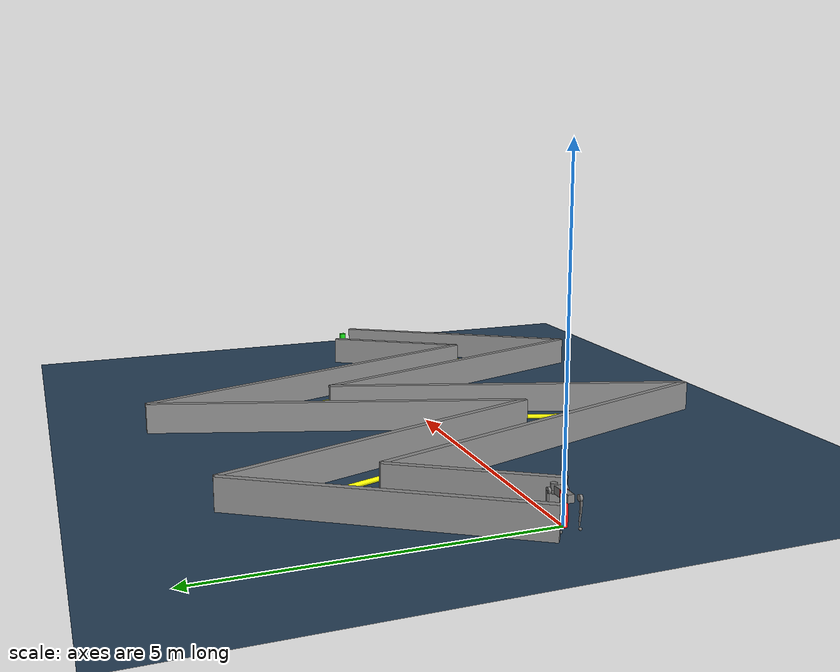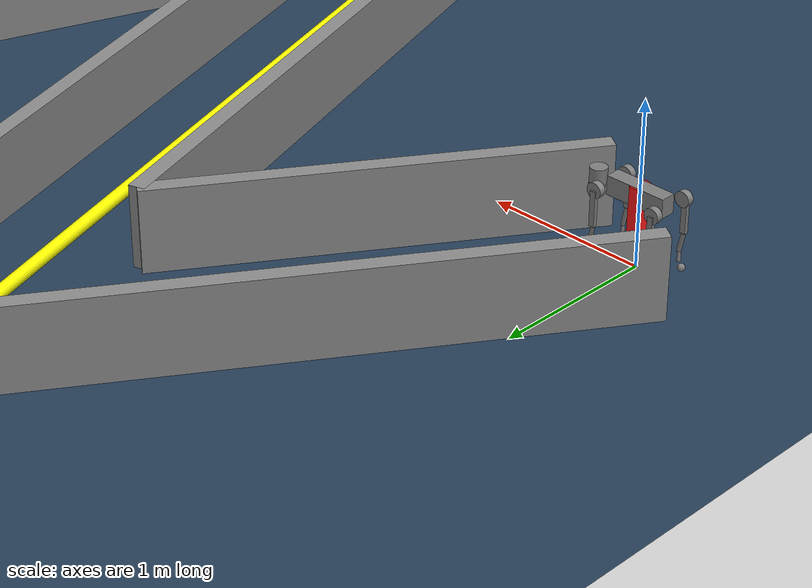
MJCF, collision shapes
<mujoco model="go2 zigzag course walled">
  <include file="go2.xml"/>

  <statistic center="5 0 0" extent="8"/>

  <visual>
    <headlight diffuse="0.6 0.6 0.6" ambient="0.3 0.3 0.3" specular="0 0 0"/>
    <rgba haze="0.15 0.25 0.35 1"/>
    <global azimuth="-130" elevation="-20"/>
  </visual>

  <asset>
    <texture type="skybox" builtin="gradient" rgb1="0.3 0.5 0.7" rgb2="0 0 0" width="512" height="3072"/>
    <texture type="2d" name="groundplane" builtin="checker" mark="edge" rgb1="0.2 0.3 0.4" rgb2="0.1 0.2 0.3"
      markrgb="0.8 0.8 0.8" width="300" height="300"/>
    <material name="groundplane" texture="groundplane" texuniform="true" texrepeat="5 5" reflectance="0.2"/>
  </asset>

  <worldbody>
    <light pos="5 0 4" dir="0 0 -1" directional="true"/>
    <geom name="floor" size="0 0 0.05" type="plane" material="groundplane"/>

    <geom name="wp_0" type="cylinder" pos=" 0  0 0.25" size="0.06 0.25" rgba="1.0 0.1 0.1 1" contype="0" conaffinity="0"/>
    <geom name="wp_1" type="cylinder" pos=" 2  3 0.125" size="0.06 0.125" rgba="1.0 0.5 0.0 0.3" contype="0" conaffinity="0"/>
    <geom name="wp_2" type="cylinder" pos=" 4 -3 0.125" size="0.06 0.125" rgba="1.0 0.5 0.0 0.3" contype="0" conaffinity="0"/>
    <geom name="wp_3" type="cylinder" pos=" 6  3 0.125" size="0.06 0.125" rgba="1.0 0.5 0.0 0.3" contype="0" conaffinity="0"/>
    <geom name="wp_4" type="cylinder" pos=" 8 -3 0.125" size="0.06 0.125" rgba="1.0 0.5 0.0 0.3" contype="0" conaffinity="0"/>
    <geom name="wp_5" type="cylinder" pos="10  0 0.25" size="0.06 0.25" rgba="0.1 0.9 0.1 1" contype="0" conaffinity="0"/>

    <!-- ── Path segments (capsules) ────────────────────────────────────────
         fromto connects consecutive waypoints directly on the ground.    -->
    <geom name="seg_0" type="capsule" fromto=" 0  0 0.04   2  3 0.04" size="0.04" rgba="1 1 0 0.9" contype="0" conaffinity="0"/>
    <geom name="seg_1" type="capsule" fromto=" 2  3 0.04   4 -3 0.04" size="0.04" rgba="1 1 0 0.9" contype="0" conaffinity="0"/>
    <geom name="seg_2" type="capsule" fromto=" 4 -3 0.04   6  3 0.04" size="0.04" rgba="1 1 0 0.9" contype="0" conaffinity="0"/>
    <geom name="seg_3" type="capsule" fromto=" 6  3 0.04   8 -3 0.04" size="0.04" rgba="1 1 0 0.9" contype="0" conaffinity="0"/>
    <geom name="seg_4" type="capsule" fromto=" 8 -3 0.04  10  0 0.04" size="0.04" rgba="1 1 0 0.9" contype="0" conaffinity="0"/>

    <!-- Seg 0 walls  ez=0.9828 (atan2(3,2) = 56.3°) -->
    <geom name="wall_L0" type="box" pos=" 0.868  2.203 0.25" size="2.315 0.05 0.25" euler="0 0  0.9828" rgba="0.55 0.55 0.55 1"/>
    <geom name="wall_R0" type="box" pos=" 1.133  0.798 0.25" size="1.292 0.05 0.25" euler="0 0  0.9828" rgba="0.55 0.55 0.55 1"/>

    <!-- Seg 1 walls  ez=-1.2490 (atan2(-6,2) = -71.6°) -->
    <geom name="wall_L1" type="box" pos=" 3.076  1.355 0.25" size="2.924 0.05 0.25" euler="0 0 -1.2490" rgba="0.55 0.55 0.55 1"/>
    <geom name="wall_R1" type="box" pos=" 2.925 -1.354 0.25" size="3.401 0.05 0.25" euler="0 0 -1.2490" rgba="0.55 0.55 0.55 1"/>

    <!-- Seg 2 walls  ez=1.2490 (atan2(6,2) = 71.6°) -->
    <geom name="wall_L2" type="box" pos=" 5.000  1.581 0.25" size="3.162 0.05 0.25" euler="0 0  1.2490" rgba="0.55 0.55 0.55 1"/>
    <geom name="wall_R2" type="box" pos=" 5.000 -1.581 0.25" size="3.162 0.05 0.25" euler="0 0  1.2490" rgba="0.55 0.55 0.55 1"/>

    <!-- Seg 3 walls  ez=-1.2490 -->
    <geom name="wall_L3" type="box" pos=" 7.076  1.355 0.25" size="3.401 0.05 0.25" euler="0 0 -1.2490" rgba="0.55 0.55 0.55 1"/>
    <geom name="wall_R3" type="box" pos=" 6.925 -1.355 0.25" size="2.924 0.05 0.25" euler="0 0 -1.2490" rgba="0.55 0.55 0.55 1"/>

    <!-- Seg 4 walls  ez=0.9828 -->
    <geom name="wall_L4" type="box" pos=" 8.868 -0.798 0.25" size="1.292 0.05 0.25" euler="0 0  0.9828" rgba="0.55 0.55 0.55 1"/>
    <geom name="wall_R4" type="box" pos=" 9.133 -2.203 0.25" size="2.315 0.05 0.25" euler="0 0  0.9828" rgba="0.55 0.55 0.55 1"/>

  </worldbody>

  <!-- Spawn facing 45° CCW (northeast) — aligns with first zigzag segment -->
  <!-- yaw=45° → qw=cos(22.5°)=0.9239, qz=sin(22.5°)=0.3827 -->
  <keyframe>
    <key name="home" qpos="0 0 0.27 0.9239 0 0 0.3827 0 0.9 -1.8 0 0.9 -1.8 0 0.9 -1.8 0 0.9 -1.8"
      ctrl="0 0.9 -1.8 0 0.9 -1.8 0 0.9 -1.8 0 0.9 -1.8" />
  </keyframe>

</mujoco>

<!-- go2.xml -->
<mujoco model="go2">
  <compiler angle="radian" meshdir="assets" autolimits="true" />

  <option cone="elliptic" impratio="100" />

  <default>
    <default class="go2">
      <geom friction="0.4" margin="0.001" condim="1"/>
      <joint axis="0 1 0" damping="0.1" armature="0.01" frictionloss="0.2"/>
      <motor ctrlrange="-23.7 23.7"/>
      <default class="abduction">
        <joint axis="1 0 0" range="-1.0472 1.0472"/>
      </default>
      <default class="hip">
        <default class="front_hip">
          <joint range="-1.5708 3.4907"/>
        </default>
        <default class="back_hip">
          <joint range="-0.5236 4.5379"/>
        </default>
      </default>
      <default class="knee">
        <joint range="-2.7227 -0.83776"/>
        <motor ctrlrange="-45.43 45.43"/>
      </default>
      <default class="visual">
        <geom type="mesh" contype="0" conaffinity="0" group="2"/>
      </default>
      <default class="collision">
        <geom group="3"/>
        <default class="foot">
          <geom size="0.022" pos="-0.002 0 -0.213" priority="1" condim="6"
            friction="0.8 0.02 0.01"/>
        </default>
      </default>
    </default>
  </default>

  <asset>
    <material name="metal" rgba=".9 .95 .95 1" />
    <material name="black" rgba="0 0 0 1" />
    <material name="white" rgba="1 1 1 1" />
    <material name="gray" rgba="0.671705 0.692426 0.774270 1" />

    <mesh file="base_0.obj" />
    <mesh file="base_1.obj" />
    <mesh file="base_2.obj" />
    <mesh file="base_3.obj" />
    <mesh file="base_4.obj" />
    <mesh file="hip_0.obj" />
    <mesh file="hip_1.obj" />
    <mesh file="thigh_0.obj" />
    <mesh file="thigh_1.obj" />
    <mesh file="thigh_mirror_0.obj" />
    <mesh file="thigh_mirror_1.obj" />
    <mesh file="calf_0.obj" />
    <mesh file="calf_1.obj" />
    <mesh file="calf_mirror_0.obj" />
    <mesh file="calf_mirror_1.obj" />
    <mesh file="foot.obj" />
  </asset>

  <worldbody>
    <body name="base_link" pos="0 0 0.445" childclass="go2">
      <inertial pos="0.021112 0 -0.005366" quat="-0.000543471 0.713435 -0.00173769 0.700719"
        mass="6.921"
        diaginertia="0.107027 0.0980771 0.0244531" />
      <freejoint />
      <geom mesh="base_0" material="black" class="visual" />
      <geom mesh="base_1" material="black" class="visual" />
      <geom mesh="base_2" material="black" class="visual" />
      <geom mesh="base_3" material="white" class="visual" />
      <geom mesh="base_4" material="gray" class="visual" />
      <geom size="0.1881 0.04675 0.057" type="box" class="collision" />
      <geom size="0.05 0.045" pos="0.285 0 0.01" type="cylinder" class="collision" />
      <geom size="0.047" pos="0.293 0 -0.06" class="collision" />
      <site name="imu" pos="-0.02557 0 0.04232" />
      <!-- 1st-person camera: mounted at Go2's head, looking forward (+X body) -->
      <camera name="head_cam" pos="0.30 0 0.05" xyaxes="0 -1 0 0 0 1" fovy="90" />
      <body name="FL_hip" pos="0.1934 0.0465 0">
        <inertial pos="-0.0054 0.00194 -0.000105" quat="0.497014 0.499245 0.505462 0.498237"
          mass="0.678"
          diaginertia="0.00088403 0.000596003 0.000479967" />
        <joint name="FL_hip_joint" class="abduction" />
        <geom mesh="hip_0" material="metal" class="visual" />
        <geom mesh="hip_1" material="gray" class="visual" />
        <geom size="0.046 0.02" pos="0 0.08 0" quat="1 1 0 0" type="cylinder" class="collision" />
        <body name="FL_thigh" pos="0 0.0955 0">
          <inertial pos="-0.00374 -0.0223 -0.0327" quat="0.829533 0.0847635 -0.0200632 0.551623"
            mass="1.152"
            diaginertia="0.00594973 0.00584149 0.000878787" />
          <joint name="FL_thigh_joint" class="front_hip" />
          <geom mesh="thigh_0" material="metal" class="visual" />
          <geom mesh="thigh_1" material="gray" class="visual" />
          <geom size="0.1065 0.01225 0.017" pos="0 0 -0.1065" quat="0.707107 0 0.707107 0"
            type="box" class="collision" />
          <body name="FL_calf" pos="0 0 -0.213">
            <inertial pos="0.00629595 -0.000622121 -0.141417"
              quat="0.710672 0.00154099 -0.00450087 0.703508"
              mass="0.241352" diaginertia="0.0014901 0.00146356 5.31397e-05" />
            <joint name="FL_calf_joint" class="knee" />
            <geom mesh="calf_0" material="gray" class="visual" />
            <geom mesh="calf_1" material="black" class="visual" />
            <geom size="0.012 0.06" pos="0.008 0 -0.06" quat="0.994493 0 -0.104807 0"
              type="cylinder" class="collision" />
            <geom size="0.011 0.0325" pos="0.02 0 -0.148" quat="0.999688 0 0.0249974 0"
              type="cylinder" class="collision" />
            <geom pos="0 0 -0.213" mesh="foot" class="visual" material="black" />
            <geom name="FL" class="foot" />
            <body name="FL_foot" pos="0 0 -0.213" />
          </body>
        </body>
      </body>
      <body name="FR_hip" pos="0.1934 -0.0465 0">
        <inertial pos="-0.0054 -0.00194 -0.000105" quat="0.498237 0.505462 0.499245 0.497014"
          mass="0.678"
          diaginertia="0.00088403 0.000596003 0.000479967" />
        <joint name="FR_hip_joint" class="abduction" />
        <geom mesh="hip_0" material="metal" class="visual" quat="4.63268e-05 1 0 0" />
        <geom mesh="hip_1" material="gray" class="visual" quat="4.63268e-05 1 0 0" />
        <geom size="0.046 0.02" pos="0 -0.08 0" quat="0.707107 0.707107 0 0" type="cylinder"
          class="collision" />
        <body name="FR_thigh" pos="0 -0.0955 0">
          <inertial pos="-0.00374 0.0223 -0.0327" quat="0.551623 -0.0200632 0.0847635 0.829533"
            mass="1.152"
            diaginertia="0.00594973 0.00584149 0.000878787" />
          <joint name="FR_thigh_joint" class="front_hip" />
          <geom mesh="thigh_mirror_0" material="metal" class="visual" />
          <geom mesh="thigh_mirror_1" material="gray" class="visual" />
          <geom size="0.1065 0.01225 0.017" pos="0 0 -0.1065" quat="0.707107 0 0.707107 0"
            type="box" class="collision" />
          <body name="FR_calf" pos="0 0 -0.213">
            <inertial pos="0.00629595 0.000622121 -0.141417"
              quat="0.703508 -0.00450087 0.00154099 0.710672"
              mass="0.241352" diaginertia="0.0014901 0.00146356 5.31397e-05" />
            <joint name="FR_calf_joint" class="knee" />
            <geom mesh="calf_mirror_0" material="gray" class="visual" />
            <geom mesh="calf_mirror_1" material="black" class="visual" />
            <geom size="0.013 0.06" pos="0.01 0 -0.06" quat="0.995004 0 -0.0998334 0"
              type="cylinder" class="collision" />
            <geom size="0.011 0.0325" pos="0.02 0 -0.148" quat="0.999688 0 0.0249974 0"
              type="cylinder" class="collision" />
            <geom pos="0 0 -0.213" mesh="foot" class="visual" material="black" />
            <geom name="FR" class="foot" />
            <body name="FR_foot" pos="0 0 -0.213" />
          </body>
        </body>
      </body>
      <body name="RL_hip" pos="-0.1934 0.0465 0">
        <inertial pos="0.0054 0.00194 -0.000105" quat="0.505462 0.498237 0.497014 0.499245"
          mass="0.678"
          diaginertia="0.00088403 0.000596003 0.000479967" />
        <joint name="RL_hip_joint" class="abduction" />
        <geom mesh="hip_0" material="metal" class="visual" quat="4.63268e-05 0 1 0" />
        <geom mesh="hip_1" material="gray" class="visual" quat="4.63268e-05 0 1 0" />
        <geom size="0.046 0.02" pos="0 0.08 0" quat="0.707107 0.707107 0 0" type="cylinder"
          class="collision" />
        <body name="RL_thigh" pos="0 0.0955 0">
          <inertial pos="-0.00374 -0.0223 -0.0327" quat="0.829533 0.0847635 -0.0200632 0.551623"
            mass="1.152"
            diaginertia="0.00594973 0.00584149 0.000878787" />
          <joint name="RL_thigh_joint" class="back_hip" />
          <geom mesh="thigh_0" material="metal" class="visual" />
          <geom mesh="thigh_1" material="gray" class="visual" />
          <geom size="0.1065 0.01225 0.017" pos="0 0 -0.1065" quat="0.707107 0 0.707107 0"
            type="box" class="collision" />
          <body name="RL_calf" pos="0 0 -0.213">
            <inertial pos="0.00629595 -0.000622121 -0.141417"
              quat="0.710672 0.00154099 -0.00450087 0.703508"
              mass="0.241352" diaginertia="0.0014901 0.00146356 5.31397e-05" />
            <joint name="RL_calf_joint" class="knee" />
            <geom mesh="calf_0" material="gray" class="visual" />
            <geom mesh="calf_1" material="black" class="visual" />
            <geom size="0.013 0.06" pos="0.01 0 -0.06" quat="0.995004 0 -0.0998334 0"
              type="cylinder" class="collision" />
            <geom size="0.011 0.0325" pos="0.02 0 -0.148" quat="0.999688 0 0.0249974 0"
              type="cylinder" class="collision" />
            <geom pos="0 0 -0.213" mesh="foot" class="visual" material="black" />
            <geom name="RL" class="foot" />
            <body name="RL_foot" pos="0 0 -0.213" />
          </body>
        </body>
      </body>
      <body name="RR_hip" pos="-0.1934 -0.0465 0">
        <inertial pos="0.0054 -0.00194 -0.000105" quat="0.499245 0.497014 0.498237 0.505462"
          mass="0.678"
          diaginertia="0.00088403 0.000596003 0.000479967" />
        <joint name="RR_hip_joint" class="abduction" />
        <geom mesh="hip_0" material="metal" class="visual"
          quat="2.14617e-09 4.63268e-05 4.63268e-05 -1" />
        <geom mesh="hip_1" material="gray" class="visual"
          quat="2.14617e-09 4.63268e-05 4.63268e-05 -1" />
        <geom size="0.046 0.02" pos="0 -0.08 0" quat="0.707107 0.707107 0 0" type="cylinder"
          class="collision" />
        <body name="RR_thigh" pos="0 -0.0955 0">
          <inertial pos="-0.00374 0.0223 -0.0327" quat="0.551623 -0.0200632 0.0847635 0.829533"
            mass="1.152"
            diaginertia="0.00594973 0.00584149 0.000878787" />
          <joint name="RR_thigh_joint" class="back_hip" />
          <geom mesh="thigh_mirror_0" material="metal" class="visual" />
          <geom mesh="thigh_mirror_1" material="gray" class="visual" />
          <geom size="0.1065 0.01225 0.017" pos="0 0 -0.1065" quat="0.707107 0 0.707107 0"
            type="box" class="collision" />
          <body name="RR_calf" pos="0 0 -0.213">
            <inertial pos="0.00629595 0.000622121 -0.141417"
              quat="0.703508 -0.00450087 0.00154099 0.710672"
              mass="0.241352" diaginertia="0.0014901 0.00146356 5.31397e-05" />
            <joint name="RR_calf_joint" class="knee" />
            <geom mesh="calf_mirror_0" material="gray" class="visual" />
            <geom mesh="calf_mirror_1" material="black" class="visual" />
            <geom size="0.013 0.06" pos="0.01 0 -0.06" quat="0.995004 0 -0.0998334 0"
              type="cylinder" class="collision" />
            <geom size="0.011 0.0325" pos="0.02 0 -0.148" quat="0.999688 0 0.0249974 0"
              type="cylinder" class="collision" />
            <geom pos="0 0 -0.213" mesh="foot" class="visual" material="black" />
            <geom name="RR" class="foot" />
            <body name="RR_foot" pos="0 0 -0.213" />
          </body>
        </body>
      </body>
    </body>
  </worldbody>

  <actuator>
    <motor class="abduction" name="FR_hip" joint="FR_hip_joint" />
    <motor class="hip" name="FR_thigh" joint="FR_thigh_joint" />
    <motor class="knee" name="FR_calf" joint="FR_calf_joint" />
    <motor class="abduction" name="FL_hip" joint="FL_hip_joint" />
    <motor class="hip" name="FL_thigh" joint="FL_thigh_joint" />
    <motor class="knee" name="FL_calf" joint="FL_calf_joint" />
    <motor class="abduction" name="RR_hip" joint="RR_hip_joint" />
    <motor class="hip" name="RR_thigh" joint="RR_thigh_joint" />
    <motor class="knee" name="RR_calf" joint="RR_calf_joint" />
    <motor class="abduction" name="RL_hip" joint="RL_hip_joint" />
    <motor class="hip" name="RL_thigh" joint="RL_thigh_joint" />
    <motor class="knee" name="RL_calf" joint="RL_calf_joint" />
  </actuator>

  <sensor>
    <jointpos name="FR_hip_pos" joint="FR_hip_joint" />
    <jointpos name="FR_thigh_pos" joint="FR_thigh_joint" />
    <jointpos name="FR_calf_pos" joint="FR_calf_joint" />
    <jointpos name="FL_hip_pos" joint="FL_hip_joint" />
    <jointpos name="FL_thigh_pos" joint="FL_thigh_joint" />
    <jointpos name="FL_calf_pos" joint="FL_calf_joint" />
    <jointpos name="RR_hip_pos" joint="RR_hip_joint" />
    <jointpos name="RR_thigh_pos" joint="RR_thigh_joint" />
    <jointpos name="RR_calf_pos" joint="RR_calf_joint" />
    <jointpos name="RL_hip_pos" joint="RL_hip_joint" />
    <jointpos name="RL_thigh_pos" joint="RL_thigh_joint" />
    <jointpos name="RL_calf_pos" joint="RL_calf_joint" />

    <jointvel name="FR_hip_vel" joint="FR_hip_joint" />
    <jointvel name="FR_thigh_vel" joint="FR_thigh_joint" />
    <jointvel name="FR_calf_vel" joint="FR_calf_joint" />
    <jointvel name="FL_hip_vel" joint="FL_hip_joint" />
    <jointvel name="FL_thigh_vel" joint="FL_thigh_joint" />
    <jointvel name="FL_calf_vel" joint="FL_calf_joint" />
    <jointvel name="RR_hip_vel" joint="RR_hip_joint" />
    <jointvel name="RR_thigh_vel" joint="RR_thigh_joint" />
    <jointvel name="RR_calf_vel" joint="RR_calf_joint" />
    <jointvel name="RL_hip_vel" joint="RL_hip_joint" />
    <jointvel name="RL_thigh_vel" joint="RL_thigh_joint" />
    <jointvel name="RL_calf_vel" joint="RL_calf_joint" />

    <jointactuatorfrc name="FR_hip_torque" joint="FR_hip_joint" noise="0.01" />
    <jointactuatorfrc name="FR_thigh_torque" joint="FR_thigh_joint" noise="0.01" />
    <jointactuatorfrc name="FR_calf_torque" joint="FR_calf_joint" noise="0.01" />
    <jointactuatorfrc name="FL_hip_torque" joint="FL_hip_joint" noise="0.01" />
    <jointactuatorfrc name="FL_thigh_torque" joint="FL_thigh_joint" noise="0.01" />
    <jointactuatorfrc name="FL_calf_torque" joint="FL_calf_joint" noise="0.01" />
    <jointactuatorfrc name="RR_hip_torque" joint="RR_hip_joint" noise="0.01" />
    <jointactuatorfrc name="RR_thigh_torque" joint="RR_thigh_joint" noise="0.01" />
    <jointactuatorfrc name="RR_calf_torque" joint="RR_calf_joint" noise="0.01" />
    <jointactuatorfrc name="RL_hip_torque" joint="RL_hip_joint" noise="0.01" />
    <jointactuatorfrc name="RL_thigh_torque" joint="RL_thigh_joint" noise="0.01" />
    <jointactuatorfrc name="RL_calf_torque" joint="RL_calf_joint" noise="0.01" />

    <framequat name="imu_quat" objtype="site" objname="imu" />
    <gyro name="imu_gyro" site="imu" />
    <accelerometer name="imu_acc" site="imu" />

    <framepos name="frame_pos" objtype="site" objname="imu" />
    <framelinvel name="frame_vel" objtype="site" objname="imu" />
  </sensor>

  <!-- keyframe "home" is defined in each scene XML so spawn angle can vary per scene -->
</mujoco>
